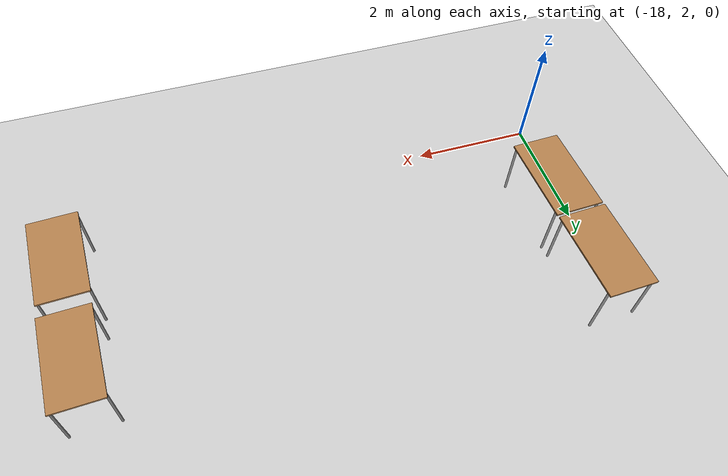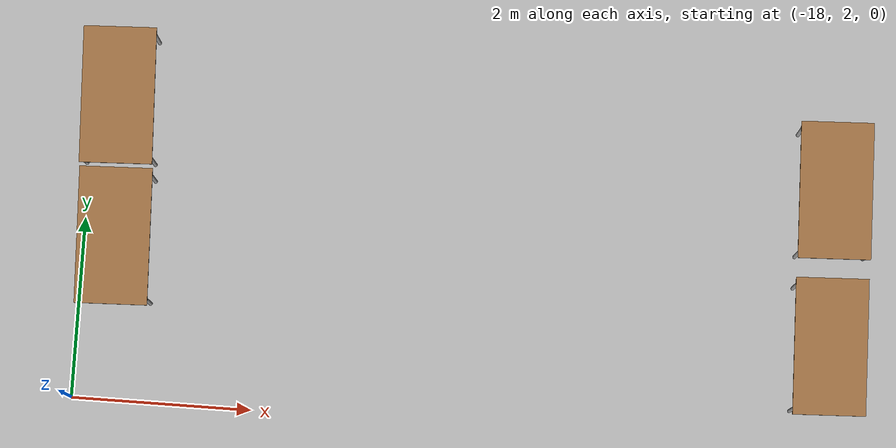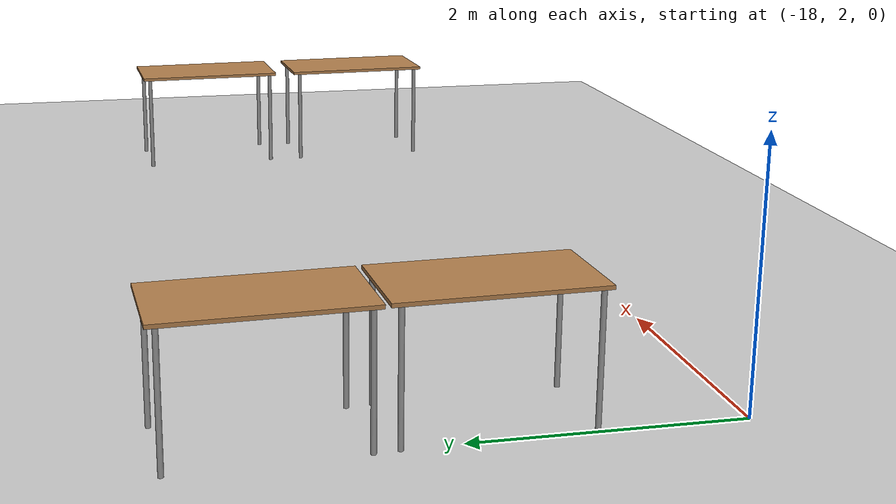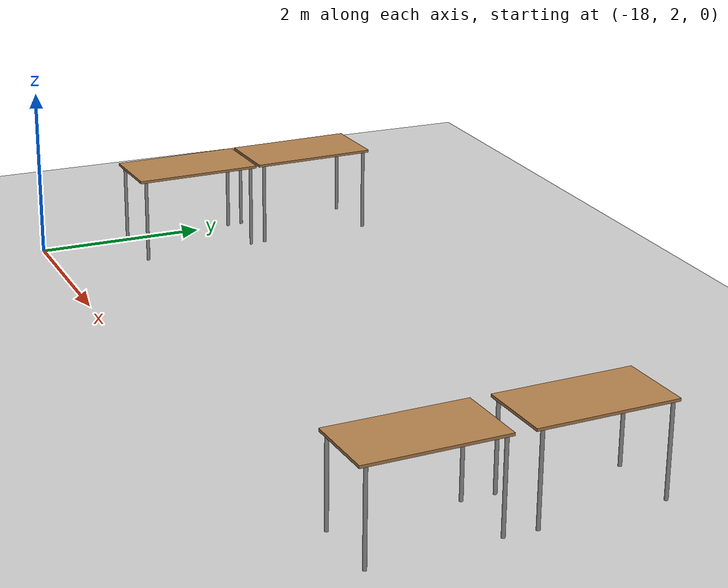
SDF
<sdf version="1.6">
 <world name="default">
  <model name="ground_plane">
   <static>1</static>
   <link name="link">
    <collision name="collision">
     <geometry><plane><normal>0 0 1</normal><size>100 100</size></plane></geometry>
     <surface><friction><ode><mu>100</mu><mu2>50</mu2></ode></friction></surface>
    </collision>
    <visual name="visual">
     <cast_shadows>0</cast_shadows>
     <geometry><plane><normal>0 0 1</normal><size>100 100</size></plane></geometry>
     <material>
      <script><uri>file://media/materials/scripts/gazebo.material</uri><name>Gazebo/Grey</name></script>
     </material>
    </visual>
   </link>
  </model>
  <model name="table">
   <static>1</static>
   <link name="link">
    <collision name="surface">
     <pose>0 0 1 0 -0 0</pose>
     <geometry><box><size>1.5 0.8 0.03</size></box></geometry>
     <surface><friction><ode><mu>0.6</mu><mu2>0.6</mu2></ode></friction></surface>
    </collision>
    <visual name="visual1">
     <pose>0 0 1 0 -0 0</pose>
     <geometry><box><size>1.5 0.8 0.03</size></box></geometry>
     <material>
      <script><uri>file://media/materials/scripts/gazebo.material</uri><name>Gazebo/Wood</name></script>
     </material>
    </visual>
    <collision name="front_left_leg">
     <pose>0.68 0.38 0.5 0 -0 0</pose>
     <geometry><cylinder><radius>0.02</radius><length>1</length></cylinder></geometry>
    </collision>
    <visual name="front_left_leg">
     <pose>0.68 0.38 0.5 0 -0 0</pose>
     <geometry><cylinder><radius>0.02</radius><length>1</length></cylinder></geometry>
     <material>
      <script><uri>file://media/materials/scripts/gazebo.material</uri><name>Gazebo/Grey</name></script>
     </material>
    </visual>
    <collision name="front_right_leg">
     <pose>0.68 -0.38 0.5 0 -0 0</pose>
     <geometry><cylinder><radius>0.02</radius><length>1</length></cylinder></geometry>
    </collision>
    <visual name="front_right_leg">
     <pose>0.68 -0.38 0.5 0 -0 0</pose>
     <geometry><cylinder><radius>0.02</radius><length>1</length></cylinder></geometry>
     <material>
      <script><uri>file://media/materials/scripts/gazebo.material</uri><name>Gazebo/Grey</name></script>
     </material>
    </visual>
    <collision name="back_right_leg">
     <pose>-0.68 -0.38 0.5 0 -0 0</pose>
     <geometry><cylinder><radius>0.02</radius><length>1</length></cylinder></geometry>
    </collision>
    <visual name="back_right_leg">
     <pose>-0.68 -0.38 0.5 0 -0 0</pose>
     <geometry><cylinder><radius>0.02</radius><length>1</length></cylinder></geometry>
     <material>
      <script><uri>file://media/materials/scripts/gazebo.material</uri><name>Gazebo/Grey</name></script>
     </material>
    </visual>
    <collision name="back_left_leg">
     <pose>-0.68 0.38 0.5 0 -0 0</pose>
     <geometry><cylinder><radius>0.02</radius><length>1</length></cylinder></geometry>
    </collision>
    <visual name="back_left_leg">
     <pose>-0.68 0.38 0.5 0 -0 0</pose>
     <geometry><cylinder><radius>0.02</radius><length>1</length></cylinder></geometry>
     <material>
      <script><uri>file://media/materials/scripts/gazebo.material</uri><name>Gazebo/Grey</name></script>
     </material>
    </visual>
   </link>
   <pose>-17.6809 5.30443 0 0 0 -1.52875</pose>
  </model>
  <model name="table_0">
   <static>1</static>
   <link name="link">
    <collision name="surface">
     <pose>0 0 1 0 -0 0</pose>
     <geometry><box><size>1.5 0.8 0.03</size></box></geometry>
     <surface><friction><ode><mu>0.6</mu><mu2>0.6</mu2></ode></friction></surface>
    </collision>
    <visual name="visual1">
     <pose>0 0 1 0 -0 0</pose>
     <geometry><box><size>1.5 0.8 0.03</size></box></geometry>
     <material>
      <script><uri>file://media/materials/scripts/gazebo.material</uri><name>Gazebo/Wood</name></script>
     </material>
    </visual>
    <collision name="front_left_leg">
     <pose>0.68 0.38 0.5 0 -0 0</pose>
     <geometry><cylinder><radius>0.02</radius><length>1</length></cylinder></geometry>
    </collision>
    <visual name="front_left_leg">
     <pose>0.68 0.38 0.5 0 -0 0</pose>
     <geometry><cylinder><radius>0.02</radius><length>1</length></cylinder></geometry>
     <material>
      <script><uri>file://media/materials/scripts/gazebo.material</uri><name>Gazebo/Grey</name></script>
     </material>
    </visual>
    <collision name="front_right_leg">
     <pose>0.68 -0.38 0.5 0 -0 0</pose>
     <geometry><cylinder><radius>0.02</radius><length>1</length></cylinder></geometry>
    </collision>
    <visual name="front_right_leg">
     <pose>0.68 -0.38 0.5 0 -0 0</pose>
     <geometry><cylinder><radius>0.02</radius><length>1</length></cylinder></geometry>
     <material>
      <script><uri>file://media/materials/scripts/gazebo.material</uri><name>Gazebo/Grey</name></script>
     </material>
    </visual>
    <collision name="back_right_leg">
     <pose>-0.68 -0.38 0.5 0 -0 0</pose>
     <geometry><cylinder><radius>0.02</radius><length>1</length></cylinder></geometry>
    </collision>
    <visual name="back_right_leg">
     <pose>-0.68 -0.38 0.5 0 -0 0</pose>
     <geometry><cylinder><radius>0.02</radius><length>1</length></cylinder></geometry>
     <material>
      <script><uri>file://media/materials/scripts/gazebo.material</uri><name>Gazebo/Grey</name></script>
     </material>
    </visual>
    <collision name="back_left_leg">
     <pose>-0.68 0.38 0.5 0 -0 0</pose>
     <geometry><cylinder><radius>0.02</radius><length>1</length></cylinder></geometry>
    </collision>
    <visual name="back_left_leg">
     <pose>-0.68 0.38 0.5 0 -0 0</pose>
     <geometry><cylinder><radius>0.02</radius><length>1</length></cylinder></geometry>
     <material>
      <script><uri>file://media/materials/scripts/gazebo.material</uri><name>Gazebo/Grey</name></script>
     </material>
    </visual>
   </link>
   <pose>-17.6102 3.76208 0 0 0 -1.53459</pose>
  </model>
  <model name="table_clone_1">
   <static>1</static>
   <link name="link">
    <collision name="surface">
     <pose>0 0 1 0 -0 0</pose>
     <geometry><box><size>1.5 0.8 0.03</size></box></geometry>
     <surface><friction><ode><mu>0.6</mu><mu2>0.6</mu2></ode></friction></surface>
    </collision>
    <visual name="visual1">
     <pose>0 0 1 0 -0 0</pose>
     <geometry><box><size>1.5 0.8 0.03</size></box></geometry>
     <material>
      <script><uri>file://media/materials/scripts/gazebo.material</uri><name>Gazebo/Wood</name></script>
     </material>
    </visual>
    <collision name="front_left_leg">
     <pose>0.68 0.38 0.5 0 -0 0</pose>
     <geometry><cylinder><radius>0.02</radius><length>1</length></cylinder></geometry>
    </collision>
    <visual name="front_left_leg">
     <pose>0.68 0.38 0.5 0 -0 0</pose>
     <geometry><cylinder><radius>0.02</radius><length>1</length></cylinder></geometry>
     <material>
      <script><uri>file://media/materials/scripts/gazebo.material</uri><name>Gazebo/Grey</name></script>
     </material>
    </visual>
    <collision name="front_right_leg">
     <pose>0.68 -0.38 0.5 0 -0 0</pose>
     <geometry><cylinder><radius>0.02</radius><length>1</length></cylinder></geometry>
    </collision>
    <visual name="front_right_leg">
     <pose>0.68 -0.38 0.5 0 -0 0</pose>
     <geometry><cylinder><radius>0.02</radius><length>1</length></cylinder></geometry>
     <material>
      <script><uri>file://media/materials/scripts/gazebo.material</uri><name>Gazebo/Grey</name></script>
     </material>
    </visual>
    <collision name="back_right_leg">
     <pose>-0.68 -0.38 0.5 0 -0 0</pose>
     <geometry><cylinder><radius>0.02</radius><length>1</length></cylinder></geometry>
    </collision>
    <visual name="back_right_leg">
     <pose>-0.68 -0.38 0.5 0 -0 0</pose>
     <geometry><cylinder><radius>0.02</radius><length>1</length></cylinder></geometry>
     <material>
      <script><uri>file://media/materials/scripts/gazebo.material</uri><name>Gazebo/Grey</name></script>
     </material>
    </visual>
    <collision name="back_left_leg">
     <pose>-0.68 0.38 0.5 0 -0 0</pose>
     <geometry><cylinder><radius>0.02</radius><length>1</length></cylinder></geometry>
    </collision>
    <visual name="back_left_leg">
     <pose>-0.68 0.38 0.5 0 -0 0</pose>
     <geometry><cylinder><radius>0.02</radius><length>1</length></cylinder></geometry>
     <material>
      <script><uri>file://media/materials/scripts/gazebo.material</uri><name>Gazebo/Grey</name></script>
     </material>
    </visual>
   </link>
   <pose>-9.76136 4.83869 0 0 0 -1.52875</pose>
  </model>
  <model name="table_clone_2">
   <static>1</static>
   <link name="link">
    <collision name="surface">
     <pose>0 0 1 0 -0 0</pose>
     <geometry><box><size>1.5 0.8 0.03</size></box></geometry>
     <surface><friction><ode><mu>0.6</mu><mu2>0.6</mu2></ode></friction></surface>
    </collision>
    <visual name="visual1">
     <pose>0 0 1 0 -0 0</pose>
     <geometry><box><size>1.5 0.8 0.03</size></box></geometry>
     <material>
      <script><uri>file://media/materials/scripts/gazebo.material</uri><name>Gazebo/Wood</name></script>
     </material>
    </visual>
    <collision name="front_left_leg">
     <pose>0.68 0.38 0.5 0 -0 0</pose>
     <geometry><cylinder><radius>0.02</radius><length>1</length></cylinder></geometry>
    </collision>
    <visual name="front_left_leg">
     <pose>0.68 0.38 0.5 0 -0 0</pose>
     <geometry><cylinder><radius>0.02</radius><length>1</length></cylinder></geometry>
     <material>
      <script><uri>file://media/materials/scripts/gazebo.material</uri><name>Gazebo/Grey</name></script>
     </material>
    </visual>
    <collision name="front_right_leg">
     <pose>0.68 -0.38 0.5 0 -0 0</pose>
     <geometry><cylinder><radius>0.02</radius><length>1</length></cylinder></geometry>
    </collision>
    <visual name="front_right_leg">
     <pose>0.68 -0.38 0.5 0 -0 0</pose>
     <geometry><cylinder><radius>0.02</radius><length>1</length></cylinder></geometry>
     <material>
      <script><uri>file://media/materials/scripts/gazebo.material</uri><name>Gazebo/Grey</name></script>
     </material>
    </visual>
    <collision name="back_right_leg">
     <pose>-0.68 -0.38 0.5 0 -0 0</pose>
     <geometry><cylinder><radius>0.02</radius><length>1</length></cylinder></geometry>
    </collision>
    <visual name="back_right_leg">
     <pose>-0.68 -0.38 0.5 0 -0 0</pose>
     <geometry><cylinder><radius>0.02</radius><length>1</length></cylinder></geometry>
     <material>
      <script><uri>file://media/materials/scripts/gazebo.material</uri><name>Gazebo/Grey</name></script>
     </material>
    </visual>
    <collision name="back_left_leg">
     <pose>-0.68 0.38 0.5 0 -0 0</pose>
     <geometry><cylinder><radius>0.02</radius><length>1</length></cylinder></geometry>
    </collision>
    <visual name="back_left_leg">
     <pose>-0.68 0.38 0.5 0 -0 0</pose>
     <geometry><cylinder><radius>0.02</radius><length>1</length></cylinder></geometry>
     <material>
      <script><uri>file://media/materials/scripts/gazebo.material</uri><name>Gazebo/Grey</name></script>
     </material>
    </visual>
   </link>
   <pose>-9.70041 3.12909 0 0 0 -1.52875</pose>
  </model>
 </world>
</sdf>
